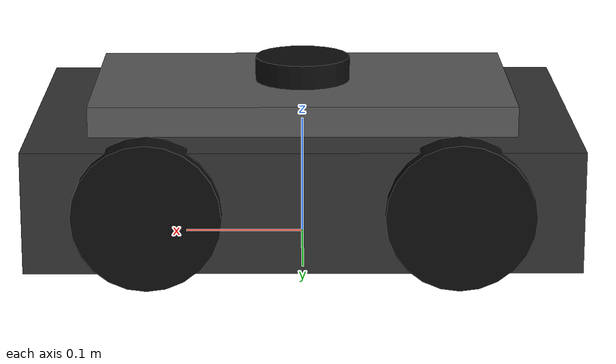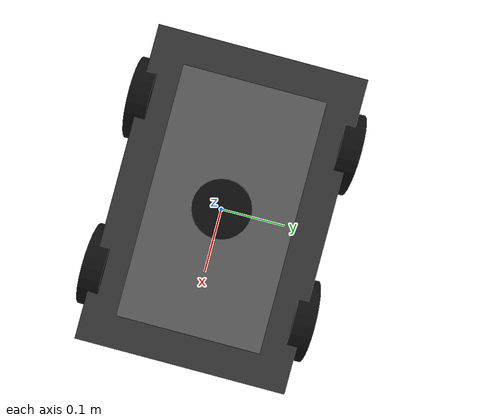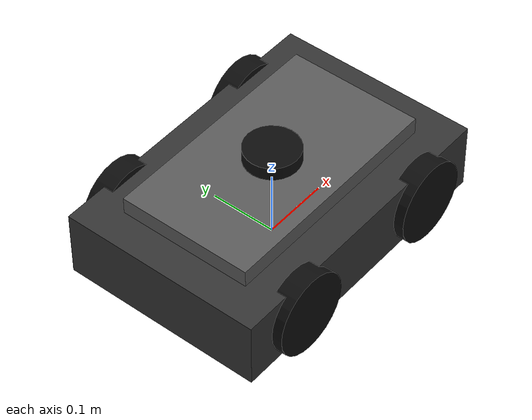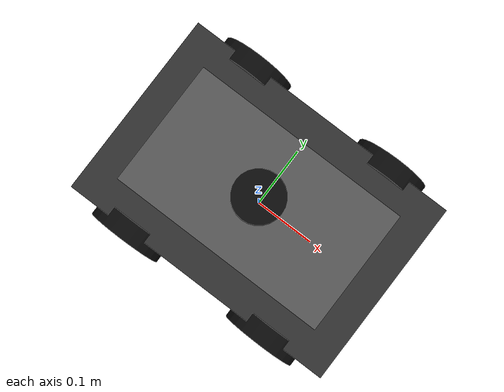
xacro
<?xml version="1.0"?>
<robot name="autonomous_rover" xmlns:xacro="http://www.ros.org/wiki/xacro">

    <xacro:include filename="$(find autonomous_rover_description)/urdf/common_properties.xacro" />
    <xacro:include filename="$(find autonomous_rover_description)/urdf/rover_base.xacro" />
    <xacro:include filename="$(find autonomous_rover_description)/urdf/rover_gazebo.xacro"/>
    <xacro:include filename="$(find autonomous_rover_description)/urdf/lidar.xacro"/>

</robot>

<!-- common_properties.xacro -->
<robot xmlns:xacro="http://www.ros.org/wiki/xacro">
    <material name="black">
        <color rgba="0.05 0.05 0.05 1" />
    </material>

    <material name="graphite_black">
        <color rgba="0.1 0.1 0.1 1.0"/>
    </material>

    <material name="rubber_black">
        <color rgba="0.05 0.05 0.05 1.0"/>
    </material>

    <material name="light_gray">
        <color rgba="0.35 0.35 0.35 1.0" />
    </material>

    <material name="metallic_gray">
        <color rgba="0.25 0.25 0.25 1.0"/>
    </material>

    <material name="dark_gray">
        <color rgba="0.2 0.2 0.2 1.0"/>
    </material>

    <material name="camera_blue">
        <color rgba="0.2 0.4 0.8 1.0"/>
    </material>

    <material name="lens_black">
        <color rgba="0.01 0.01 0.01 1.0"/>
    </material>

    <xacro:macro name="box_inertia" params="m x y z o_xyz o_rpy">
        <inertial>
            <mass value="${m}" />
            <origin xyz="${o_xyz}" rpy="${o_rpy}" />
            <inertia ixx="${(m/12) * (z*z + y*y)}" ixy="0" ixz="0"
                    iyy="${(m/12) * (x*x + z*z)}" iyz="0"
                    izz="${(m/12) * (x*x + y*y)}" />
        </inertial>
    </xacro:macro>

    <xacro:macro name="cylinder_inertia" params="m r l o_xyz o_rpy">
        <inertial>
            <mass value="${m}" />
            <origin xyz="${o_xyz}" rpy="${o_rpy}" />
            <inertia ixx="${(m/12) * (3*r*r + l*l)}" ixy="0" ixz="0"
                    iyy="${(m/12) * (3*r*r + l*l)}" iyz="0"
                    izz="${(m/2) * (r*r)}" />
        </inertial>
    </xacro:macro>

    <xacro:macro name="sphere_inertia" params="m r o_xyz o_rpy">
        <inertial>
            <mass value="${m}" />
            <origin xyz="${o_xyz}" rpy="${o_rpy}" />
            <inertia ixx="${(2/5) * m * r * r}" ixy="0" ixz="0"
                    iyy="${(2/5) * m * r * r}" iyz="0"
                    izz="${(2/5) * m * r * r}" />
        </inertial>
    </xacro:macro>

</robot>

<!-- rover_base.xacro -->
<robot xmlns:xacro="http://www.ros.org/wiki/xacro">
    <xacro:property name="base_length" value="0.45" />
    <xacro:property name="base_width" value="0.30" />
    <xacro:property name="base_height" value="0.10"/>
    <xacro:property name="wheel_radius" value="0.06" />
    <xacro:property name="wheel_length" value="0.03"/>
    <xacro:property name="mast_radius" value="0.015" />
    <xacro:property name="mast_length" value="0.25" />
    <xacro:property name="camera_length" value="0.05"/>
    <xacro:property name="camera_width" value="0.05"/>
    <xacro:property name="camera_height" value="0.04"/>

    <link name="base_footprint" />

    <link name="base_link">
        <visual>
            <geometry>
                <box size="0.45 0.30 0.10"/>
            </geometry>
            <origin xyz="0 0 0" rpy="0 0 0"/>
            <material name="dark_gray" />
        </visual>
        <collision>
            <geometry>
                <box size="0.45 0.30 0.10"/>
            </geometry>
            <origin xyz="0 0 0" rpy="0 0 0"/>
        </collision>
        <xacro:box_inertia m="5.0" x="${base_length}" y="${base_width}" z="${base_height}"
                           o_xyz="0 0 ${base_height / 2.0}" o_rpy="0 0 0" />
    </link>

    <xacro:macro name="wheel" params="prefix">
        <link name="${prefix}_wheel">
            <visual>
                <geometry>
                    <cylinder radius="${wheel_radius}" length="${wheel_length}"/>
                </geometry>
                <origin xyz="0 0 0" rpy="${pi/2} 0 0"/>
                <material name="black"/>
            </visual>

            <collision>
                <geometry>
                    <cylinder radius="${wheel_radius}" length="${wheel_length}"/>
                </geometry>
                <origin xyz="0 0 0" rpy="${pi/2} 0 0"/>
            </collision>
            <xacro:cylinder_inertia m="1.0" r="${wheel_radius}" l="${wheel_length}" o_xyz="0 0 0" o_rpy="0 0 0"/>
        </link>
    </xacro:macro>

    <xacro:wheel prefix="left_back" />
    <xacro:wheel prefix="left_front" />
    <xacro:wheel prefix="right_back" />
    <xacro:wheel prefix="right_front" />

    <link name="upper_base_link">
        <visual>
            <geometry>
                <box size="0.35 0.20 0.05"/>
            </geometry>
            <origin xyz="0 0 0" rpy="0 0 0" />
            <material name="light_gray" />
        </visual>
        <collision>
            <geometry>
                <box size="0.35 0.20 0.05"/>
            </geometry>
            <origin xyz="0 0 0" rpy="0 0 0" />
        </collision>
        <xacro:box_inertia m="1.0" x="0.35" y="0.20" z="0.05"
                           o_xyz="0 0 0" o_rpy="0 0 0" />
    </link>

    <joint name="base_joint" type="fixed">
        <parent link="base_footprint"/>
        <child link="base_link"/>
        <origin xyz="0 0 ${wheel_radius}" rpy="0 0 0"/>
    </joint>

    <joint name="base_left_back_joint" type="continuous">
        <parent link="base_link"/>
        <child link="left_back_wheel"/>
        <origin xyz="-0.125 -0.15 0" rpy="0 0 0" />
        <axis xyz="0 1 0" />
    </joint>

    <joint name="base_left_front_joint" type="continuous">
        <parent link="base_link"/>
        <child link="left_front_wheel"/>
        <origin xyz="0.125 -0.15 0" rpy="0 0 0" />
        <axis xyz="0 1 0" />
    </joint>

    <joint name="base_right_back_joint" type="continuous">
        <parent link="base_link"/>
        <child link="right_back_wheel"/>
        <origin xyz="-0.125 0.15 0" rpy="0 0 0" />
        <axis xyz="0 1 0" />
    </joint>

    <joint name="base_right_front_joint" type="continuous">
        <parent link="base_link"/>
        <child link="right_front_wheel"/>
        <origin xyz="0.125 0.15 0" rpy="0 0 0" />
        <axis xyz="0 1 0" />
    </joint>

    <joint name="upper_base_joint" type="fixed">
        <parent link="base_link"/>
        <child link="upper_base_link"/>
        <origin xyz="0 0 0.05" rpy="0 0 0" />

    </joint>

      <!-- ================= Wheel friction tuning ================= -->

    <gazebo reference="left_front_wheel">
        <collision>
            <surface>
                <friction>
                    <ode>
                        <mu>1.0</mu>      <!-- forward -->
                        <mu2>0.2</mu2>    <!-- sideways -->
                        <slip1>0.0</slip1>
                        <slip2>0.1</slip2>
                    </ode>
                </friction>
            </surface>
        </collision>
    </gazebo>

    <gazebo reference="right_front_wheel">
        <collision>
            <surface>
                <friction>
                    <ode>
                        <mu>1.0</mu>      <!-- forward -->
                        <mu2>0.2</mu2>    <!-- sideways -->
                        <slip1>0.0</slip1>
                        <slip2>0.1</slip2>
                    </ode>
                </friction>
            </surface>
        </collision>
    </gazebo>

    <gazebo reference="left_back_wheel">
        <collision>
            <surface>
                <friction>
                    <ode>
                        <mu>1.0</mu>      <!-- forward -->
                        <mu2>0.2</mu2>    <!-- sideways -->
                        <slip1>0.0</slip1>
                        <slip2>0.1</slip2>
                    </ode>
                </friction>
            </surface>
        </collision>
    </gazebo>

    <gazebo reference="right_back_wheel">
        <collision>
            <surface>
                <friction>
                    <ode>
                        <mu>1.0</mu>      <!-- forward -->
                        <mu2>0.2</mu2>    <!-- sideways -->
                        <slip1>0.0</slip1>
                        <slip2>0.1</slip2>
                    </ode>
                </friction>
            </surface>
        </collision>
    </gazebo>

</robot>

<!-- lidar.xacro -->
<robot xmlns:xacro="http://www.ros.org/wiki/xacro">

  <link name="lidar_link">
    <visual>
      <geometry>
        <cylinder radius="0.04" length="0.03"/>
      </geometry>
      <material name="black"/>
    </visual>

    <collision>
      <geometry>
        <cylinder radius="0.04" length="0.03"/>
      </geometry>
    </collision>

    <inertial>
      <mass value="0.15"/>
      <origin xyz="0 0 0"/>
      <inertia
        ixx="0.0001" ixy="0" ixz="0"
        iyy="0.0001" iyz="0"
        izz="0.0001"/>
    </inertial>
  </link>

  <joint name="lidar_joint" type="fixed">
    <parent link="base_link"/>
    <child link="lidar_link"/>
    <origin xyz="0 0 0.08" rpy="0 0 0"/>
  </joint>

  <gazebo>
    <plugin filename="gz-sim-sensors-system"
            name="gz::sim::systems::Sensors">
      <render_engine>ogre2</render_engine>
    </plugin>
  </gazebo>

  <gazebo reference="lidar_link">
    <sensor name="lidar_sensor" type="gpu_lidar">

      <gz_frame_id>lidar_link</gz_frame_id>

      <topic>/scan</topic>
      <update_rate>10</update_rate>
      <always_on>true</always_on>
      <visualize>false</visualize>

      <lidar>
        <scan>
          <horizontal>
            <samples>720</samples>
            <resolution>1</resolution>
            <min_angle>-3.14159</min_angle>
            <max_angle>3.14159</max_angle>
          </horizontal>

          <vertical>
            <samples>1</samples>
            <resolution>0.1</resolution>
            <min_angle>0.0</min_angle>
            <max_angle>0.0</max_angle>
          </vertical>
        </scan>

        <range>
          <min>0.12</min>
          <max>12.0</max>
          <resolution>0.01</resolution>
        </range>
      </lidar>

    </sensor>
  </gazebo>

</robot>
